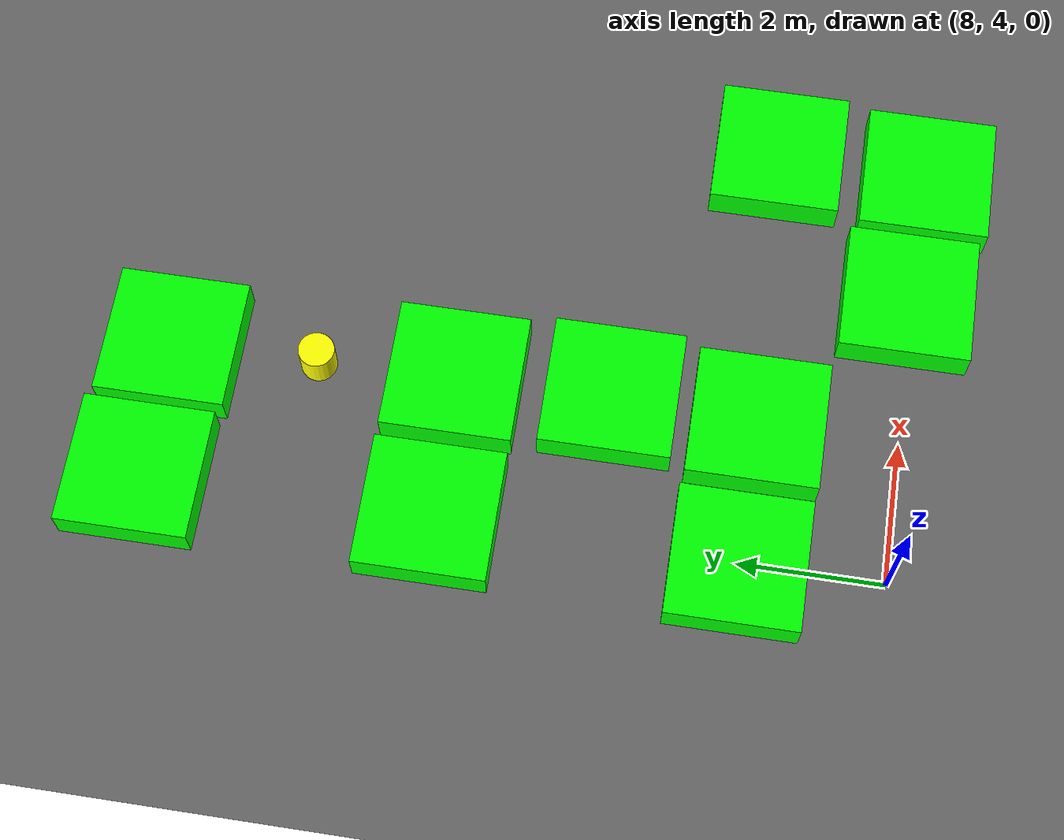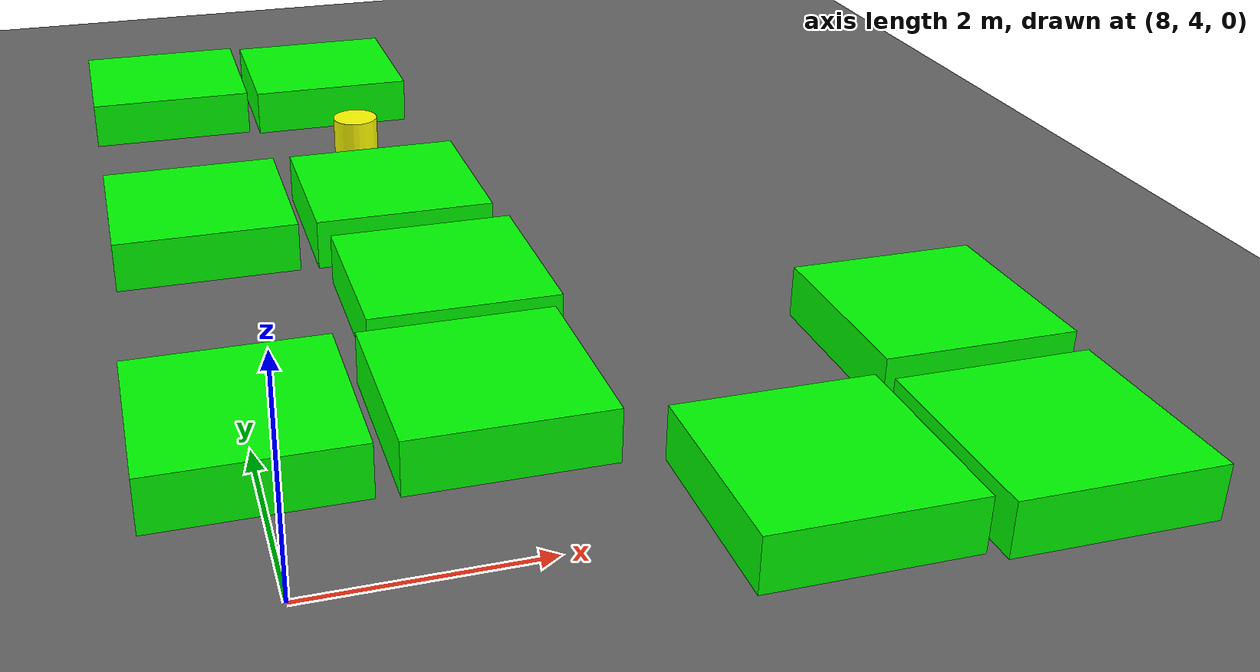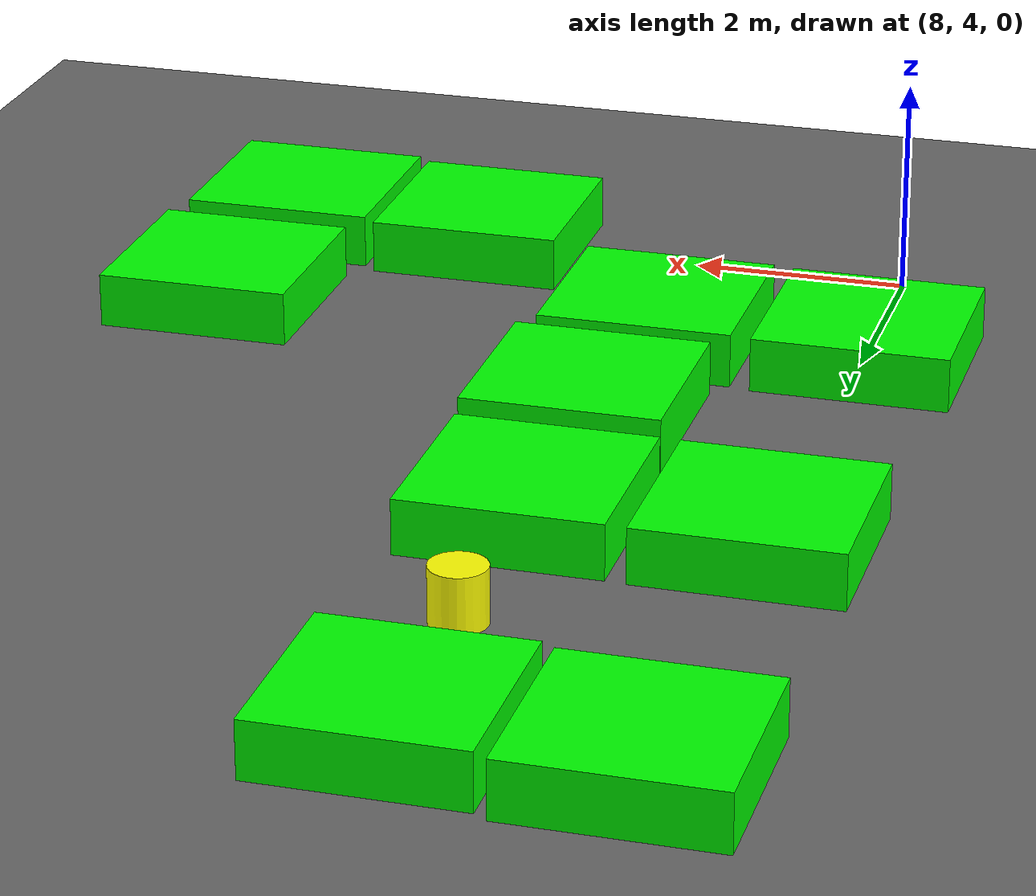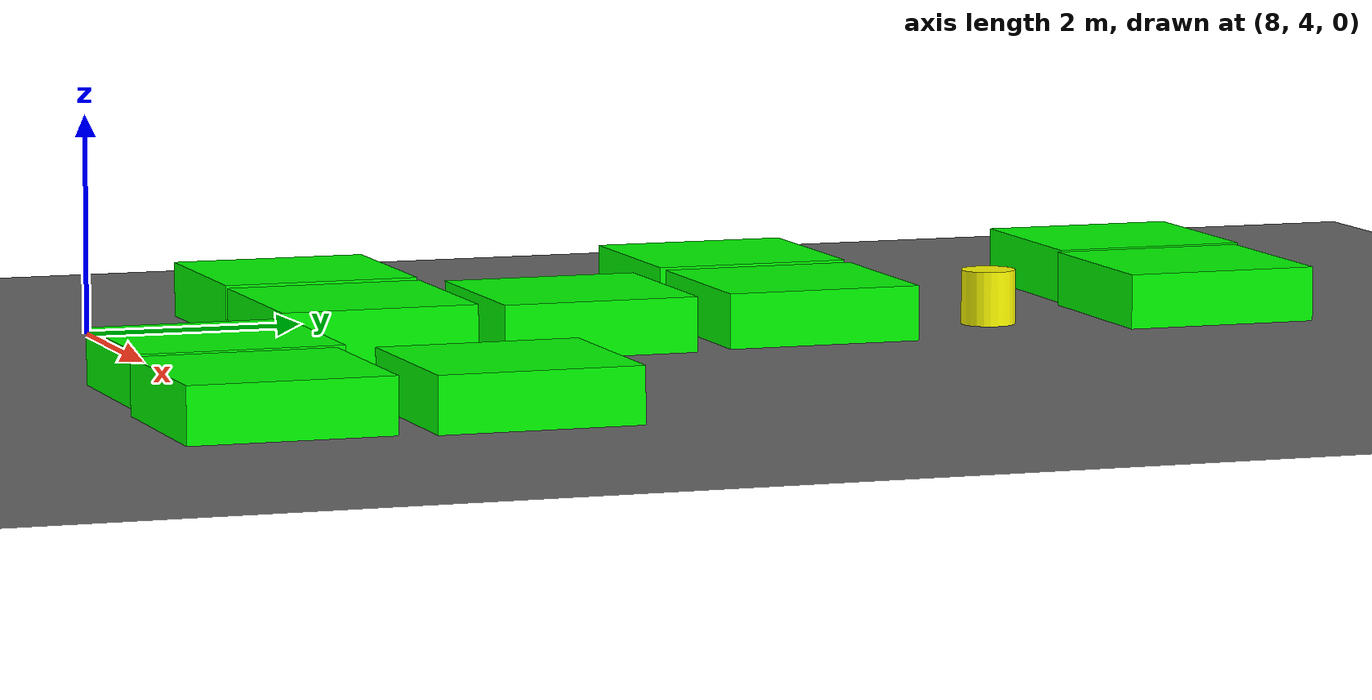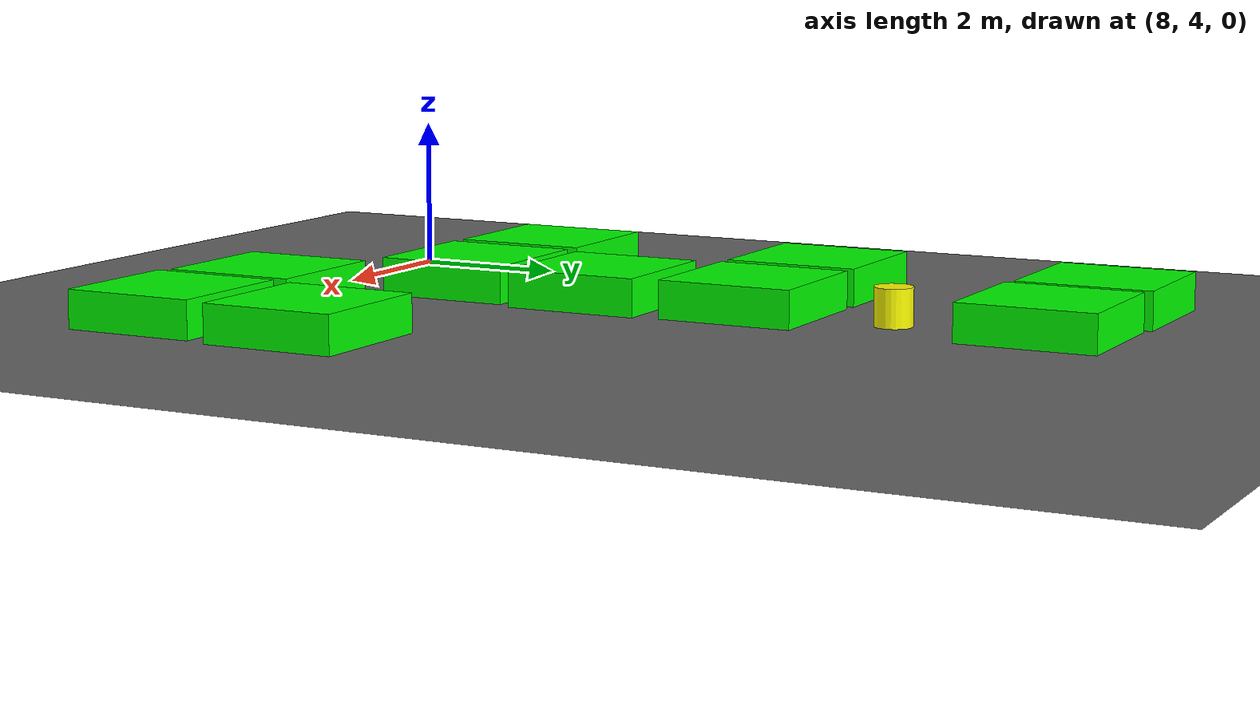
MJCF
<mujoco model="lvl5_corridor_obs10_dlong_depth2_seed2081">
    <compiler angle="degree" coordinate="local" inertiafromgeom="true"/>
    <option integrator="RK4" timestep="0.01"/>

    <asset>
        <texture builtin="gradient" height="100" rgb1="0.6 0.8 1" rgb2="0 0 0" type="skybox" width="100"/>
        <texture name="floor_texture" type="2d" builtin="checker" width="100" height="100" rgb1="0 0 0" rgb2="0.8 0.8 0.8"/>
        <material name="MatPlane" reflectance="0.5" shininess="1" specular="1" texrepeat="10 10" texture="floor_texture"/>
    </asset>

    <!-- Excluding the contact between the agent and the goal, and the agent and the floor -->
    <contact>
        <exclude body1="agent" body2="goal"/>
        <exclude body1 = "agent" body2 = "floor"/>
    </contact>

    <extension>
        <plugin plugin = "mujoco.pid">
            <instance name = "pid1">
                <config key="kp" value="2"/>
                <config key="ki" value="0"/>
                <config key="kd" value="55"/>
            </instance>
        </plugin>
    </extension>

    <worldbody>
        <light cutoff="100" diffuse="1 1 1" dir="-0 0 -1.3" directional="true" exponent="1" pos="0 0 1.3" specular=".1 .1 .1"/>
        <body name="floor" pos="0 0 0">
            <geom name="floor_geom" type="plane" size="20 20 0.1" material="MatPlane"/>
        </body>

                <body name="goal" pos="0.0000 0.0000 0">
            <geom name="goal_geom" type="plane" size="0.5 0.5 1" pos="0 0 0" rgba="1 0 0 1"/>
        </body>

                <body name="agent" pos="10.0000 12.0000 0.250">
            <joint name="j1" type="slide" axis ="1 0 0 "/>
            <joint name="j2" type="slide" axis ="0 1 0 "/>
            <geom name="agent_geom" type="cylinder" size="0.25 0.25 0.250" rgba="1 1 0 1"/>
        </body>

        <body name="obstacle1" pos="7.9948 14.0649 0.250">  <geom name="obstacle1_geom" type="box" size="0.9000 0.9000 0.250" rgba="0 1 0 1"/></body>
        <body name="obstacle2" pos="9.9111 13.9894 0.250">  <geom name="obstacle2_geom" type="box" size="0.9000 0.9000 0.250" rgba="0 1 0 1"/></body>
        <body name="obstacle3" pos="8.0067 10.0918 0.250">  <geom name="obstacle3_geom" type="box" size="0.9000 0.9000 0.250" rgba="0 1 0 1"/></body>
        <body name="obstacle4" pos="9.9869 10.0792 0.250">  <geom name="obstacle4_geom" type="box" size="0.9000 0.9000 0.250" rgba="0 1 0 1"/></body>
        <body name="obstacle5" pos="10.0661 7.9396 0.250">  <geom name="obstacle5_geom" type="box" size="0.9000 0.9000 0.250" rgba="0 1 0 1"/></body>
        <body name="obstacle6" pos="7.9419 5.9734 0.250">  <geom name="obstacle6_geom" type="box" size="0.9000 0.9000 0.250" rgba="0 1 0 1"/></body>
        <body name="obstacle7" pos="9.9320 5.9368 0.250">  <geom name="obstacle7_geom" type="box" size="0.9000 0.9000 0.250" rgba="0 1 0 1"/></body>
        <body name="obstacle8" pos="14.0972 6.0885 0.250">  <geom name="obstacle8_geom" type="box" size="0.9000 0.9000 0.250" rgba="0 1 0 1"/></body>
        <body name="obstacle9" pos="12.0834 4.0872 0.250">  <geom name="obstacle9_geom" type="box" size="0.9000 0.9000 0.250" rgba="0 1 0 1"/></body>
        <body name="obstacle10" pos="14.0023 3.9797 0.250">  <geom name="obstacle10_geom" type="box" size="0.9000 0.9000 0.250" rgba="0 1 0 1"/></body>

    </worldbody>

    <sensor>
<!-- SENSORS -->

        <distance name="dist1" geom1="agent_geom" geom2="obstacle1_geom" cutoff="1.5"/>
        <distance name="dist2" geom1="agent_geom" geom2="obstacle2_geom" cutoff="1.5"/>
        <distance name="dist3" geom1="agent_geom" geom2="obstacle3_geom" cutoff="1.5"/>
        <distance name="dist4" geom1="agent_geom" geom2="obstacle4_geom" cutoff="1.5"/>
        <distance name="dist5" geom1="agent_geom" geom2="obstacle5_geom" cutoff="1.5"/>
        <distance name="dist6" geom1="agent_geom" geom2="obstacle6_geom" cutoff="1.5"/>
        <distance name="dist7" geom1="agent_geom" geom2="obstacle7_geom" cutoff="1.5"/>
        <distance name="dist8" geom1="agent_geom" geom2="obstacle8_geom" cutoff="1.5"/>
        <distance name="dist9" geom1="agent_geom" geom2="obstacle9_geom" cutoff="1.5"/>
        <distance name="dist10" geom1="agent_geom" geom2="obstacle10_geom" cutoff="1.5"/>
</sensor>

    <actuator>
        <plugin joint="j1" plugin="mujoco.pid" instance="pid1" />
        <plugin joint="j2" plugin="mujoco.pid" instance="pid1"/>
    </actuator>
</mujoco>
